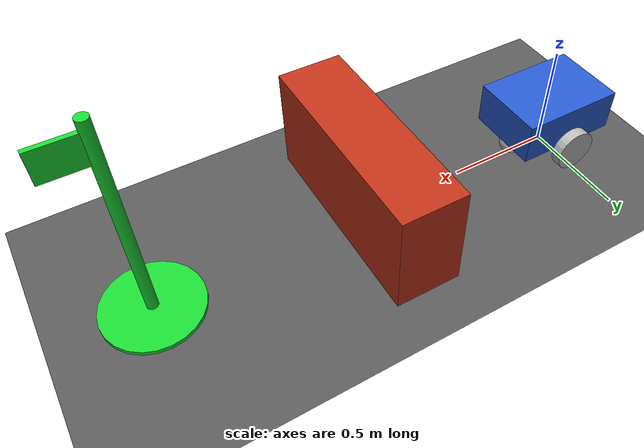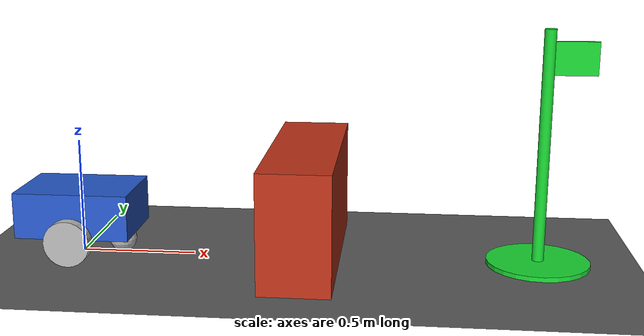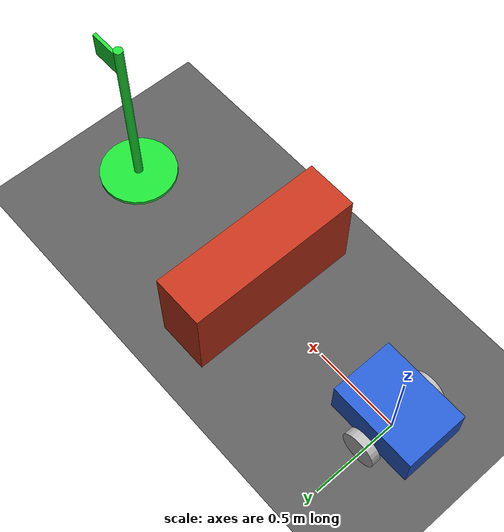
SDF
<?xml version="1.0"?>
<sdf version="1.9">
  <world name="robotics_world">
    <gravity>0 0 -9.81</gravity>

    <physics name="default_physics" type="ode">
      <max_step_size>0.001</max_step_size>
      <real_time_factor>1.0</real_time_factor>
    </physics>

    <plugin filename="gz-sim-physics-system" name="gz::sim::systems::Physics"/>
    <plugin filename="gz-sim-user-commands-system" name="gz::sim::systems::UserCommands"/>
    <plugin filename="gz-sim-scene-broadcaster-system" name="gz::sim::systems::SceneBroadcaster"/>
    <plugin filename="gz-sim-imu-system" name="gz::sim::systems::Imu"/>
    <plugin filename="gz-sim-sensors-system" name="gz::sim::systems::Sensors">
      <render_engine>ogre2</render_engine>
    </plugin>
    <plugin filename="gz-sim-contact-system" name="gz::sim::systems::Contact"/>

    <!-- Keep the world self-contained instead of depending on Gazebo model URIs. -->
    <model name="ground_plane">
      <static>true</static>
      <link name="ground_link">
        <collision name="collision">
          <geometry>
            <plane>
              <normal>0 0 1</normal>
              <size>100 100</size>
            </plane>
          </geometry>
        </collision>
        <visual name="visual">
          <geometry>
            <plane>
              <normal>0 0 1</normal>
              <size>100 100</size>
            </plane>
          </geometry>
          <material>
            <ambient>0.35 0.35 0.35 1</ambient>
            <diffuse>0.35 0.35 0.35 1</diffuse>
          </material>
        </visual>
      </link>
    </model>

    <light name="sun" type="directional">
      <cast_shadows>true</cast_shadows>
      <pose>0 0 10 0 0 0</pose>
      <diffuse>0.8 0.8 0.8 1</diffuse>
      <specular>0.2 0.2 0.2 1</specular>
      <direction>-0.5 0.1 -0.9</direction>
    </light>

    <model name="obstacle_box">
      <static>true</static>
      <pose>1.0 0 0.25 0 0 0</pose>
      <link name="obstacle_link">
        <collision name="collision">
          <geometry>
            <box>
              <size>0.30 1.00 0.50</size>
            </box>
          </geometry>
        </collision>
        <visual name="visual">
          <geometry>
            <box>
              <size>0.30 1.00 0.50</size>
            </box>
          </geometry>
          <material>
            <ambient>0.75 0.20 0.10 1</ambient>
            <diffuse>0.75 0.20 0.10 1</diffuse>
          </material>
        </visual>
      </link>
    </model>

    <!-- Visual-only goal marker at the planner goal (2.0, 0.0). -->
    <model name="goal_marker">
      <static>true</static>
      <pose>2.0 0 0.01 0 0 0</pose>
      <link name="goal_link">
        <visual name="goal_disk">
          <!-- Keep the marker visible in the GUI, but outside the LiDAR mask. -->
          <visibility_flags>2</visibility_flags>
          <geometry>
            <cylinder>
              <radius>0.22</radius>
              <length>0.02</length>
            </cylinder>
          </geometry>
          <material>
            <ambient>0.10 0.85 0.20 1</ambient>
            <diffuse>0.10 0.85 0.20 1</diffuse>
            <emissive>0.02 0.20 0.04 1</emissive>
          </material>
        </visual>
        <visual name="goal_pole">
          <visibility_flags>2</visibility_flags>
          <pose>0 0 0.50 0 0 0</pose>
          <geometry>
            <cylinder>
              <radius>0.025</radius>
              <length>1.0</length>
            </cylinder>
          </geometry>
          <material>
            <ambient>0.10 0.85 0.20 1</ambient>
            <diffuse>0.10 0.85 0.20 1</diffuse>
          </material>
        </visual>
        <visual name="goal_flag">
          <visibility_flags>2</visibility_flags>
          <pose>0.10 0 0.88 0 0 0</pose>
          <geometry>
            <box>
              <size>0.20 0.02 0.14</size>
            </box>
          </geometry>
          <material>
            <ambient>0.10 0.85 0.20 1</ambient>
            <diffuse>0.10 0.85 0.20 1</diffuse>
          </material>
        </visual>
      </link>
    </model>

    <model name="diff_drive_robot">
      <pose>0 0 0 0 0 0</pose>

      <link name="base_link">
        <pose>0 0 0.20 0 0 0</pose>
        <inertial>
          <mass>5.0</mass>
          <inertia>
            <ixx>0.12</ixx>
            <iyy>0.25</iyy>
            <izz>0.30</izz>
          </inertia>
        </inertial>
        <collision name="base_collision">
          <geometry>
            <box>
              <size>0.50 0.36 0.20</size>
            </box>
          </geometry>
        </collision>
        <visual name="base_visual">
          <geometry>
            <box>
              <size>0.50 0.36 0.20</size>
            </box>
          </geometry>
          <material>
            <ambient>0.15 0.35 0.80 1</ambient>
            <diffuse>0.15 0.35 0.80 1</diffuse>
          </material>
        </visual>

        <sensor name="lidar" type="gpu_lidar">
          <pose>0 0 0.18 0 0 0</pose>
          <topic>/scan</topic>
          <update_rate>10</update_rate>
          <ray>
            <scan>
              <horizontal>
                <samples>360</samples>
                <resolution>1</resolution>
                <min_angle>-3.14159265359</min_angle>
                <max_angle>3.14159265359</max_angle>
              </horizontal>
              <vertical>
                <samples>1</samples>
                <resolution>1</resolution>
                <min_angle>0</min_angle>
                <max_angle>0</max_angle>
              </vertical>
            </scan>
            <range>
              <min>0.12</min>
              <max>10.0</max>
              <resolution>0.01</resolution>
            </range>
            <!-- Detect physical scene visuals (flag 1), not the GUI-only goal marker (flag 2). -->
            <visibility_mask>1</visibility_mask>
          </ray>
          <always_on>true</always_on>
          <visualize>true</visualize>
        </sensor>

        <sensor name="imu" type="imu">
          <pose>0 0 0.18 0 0 0</pose>
          <topic>/imu</topic>
          <update_rate>100</update_rate>
          <always_on>true</always_on>
          <visualize>false</visualize>
        </sensor>

        <!-- Publish physical contacts for evaluation; this collision covers
             the robot body without counting normal wheel-ground contact. -->
        <sensor name="contact_sensor" type="contact">
          <topic>/collision/contacts</topic>
          <update_rate>30</update_rate>
          <always_on>true</always_on>
          <contact>
            <collision>base_collision</collision>
          </contact>
        </sensor>
      </link>

      <link name="left_wheel">
        <pose>0 0.22 0.10 1.57079632679 0 0</pose>
        <inertial>
          <mass>0.30</mass>
          <inertia>
            <ixx>0.0015</ixx>
            <iyy>0.0015</iyy>
            <izz>0.0015</izz>
          </inertia>
        </inertial>
        <collision name="collision">
          <geometry>
            <cylinder>
              <radius>0.10</radius>
              <length>0.05</length>
            </cylinder>
          </geometry>
          <surface>
            <friction>
              <ode>
                <mu>1.0</mu>
                <mu2>1.0</mu2>
              </ode>
            </friction>
          </surface>
        </collision>
        <visual name="visual">
          <geometry>
            <cylinder>
              <radius>0.10</radius>
              <length>0.05</length>
            </cylinder>
          </geometry>
        </visual>
      </link>

      <link name="right_wheel">
        <pose>0 -0.22 0.10 1.57079632679 0 0</pose>
        <inertial>
          <mass>0.30</mass>
          <inertia>
            <ixx>0.0015</ixx>
            <iyy>0.0015</iyy>
            <izz>0.0015</izz>
          </inertia>
        </inertial>
        <collision name="collision">
          <geometry>
            <cylinder>
              <radius>0.10</radius>
              <length>0.05</length>
            </cylinder>
          </geometry>
          <surface>
            <friction>
              <ode>
                <mu>1.0</mu>
                <mu2>1.0</mu2>
              </ode>
            </friction>
          </surface>
        </collision>
        <visual name="visual">
          <geometry>
            <cylinder>
              <radius>0.10</radius>
              <length>0.05</length>
            </cylinder>
          </geometry>
        </visual>
      </link>

      <link name="front_caster">
        <pose>0.18 0 0.06 0 0 0</pose>
        <collision name="collision">
          <geometry>
            <sphere>
              <radius>0.06</radius>
            </sphere>
          </geometry>
        </collision>
        <visual name="visual">
          <geometry>
            <sphere>
              <radius>0.06</radius>
            </sphere>
          </geometry>
        </visual>
      </link>

      <joint name="left_wheel_joint" type="revolute">
        <pose relative_to="left_wheel" />
        <parent>base_link</parent>
        <child>left_wheel</child>
        <axis>
          <xyz expressed_in="__model__">0 1 0</xyz>
          <limit>
            <lower>-1e16</lower>
            <upper>1e16</upper>
          </limit>
        </axis>
      </joint>

      <joint name="right_wheel_joint" type="revolute">
        <pose relative_to="right_wheel" />
        <parent>base_link</parent>
        <child>right_wheel</child>
        <axis>
          <xyz expressed_in="__model__">0 1 0</xyz>
          <limit>
            <lower>-1e16</lower>
            <upper>1e16</upper>
          </limit>
        </axis>
      </joint>

      <joint name="front_caster_joint" type="fixed">
        <parent>base_link</parent>
        <child>front_caster</child>
      </joint>

      <plugin filename="gz-sim-diff-drive-system" name="gz::sim::systems::DiffDrive">
        <left_joint>left_wheel_joint</left_joint>
        <right_joint>right_wheel_joint</right_joint>
        <wheel_separation>0.44</wheel_separation>
        <wheel_radius>0.10</wheel_radius>
        <!-- Bound actuator acceleration to keep the ideal robot physically
             stable when commands change direction or start moving. -->
        <max_linear_acceleration>0.5</max_linear_acceleration>
        <min_linear_acceleration>-0.5</min_linear_acceleration>
        <max_angular_acceleration>1.0</max_angular_acceleration>
        <min_angular_acceleration>-1.0</min_angular_acceleration>
        <max_linear_velocity>0.20</max_linear_velocity>
        <min_linear_velocity>-0.20</min_linear_velocity>
        <max_angular_velocity>1.20</max_angular_velocity>
        <min_angular_velocity>-1.20</min_angular_velocity>
        <topic>/cmd_vel</topic>
        <!-- Preserve wheel odometry separately from simulator ground truth. -->
        <odom_topic>/wheel_odom</odom_topic>
        <tf_topic>/tf_wheel</tf_topic>
        <frame_id>odom</frame_id>
        <child_frame_id>base_link</child_frame_id>
        <odom_publish_frequency>30</odom_publish_frequency>
      </plugin>

      <plugin
        filename="gz-sim-odometry-publisher-system"
        name="gz::sim::systems::OdometryPublisher">
        <odom_topic>/odom</odom_topic>
        <odom_frame>odom</odom_frame>
        <robot_base_frame>base_link</robot_base_frame>
        <tf_topic>/tf_ground_truth</tf_topic>
        <odom_publish_frequency>30</odom_publish_frequency>
        <dimensions>2</dimensions>
      </plugin>
    </model>
  </world>
</sdf>
